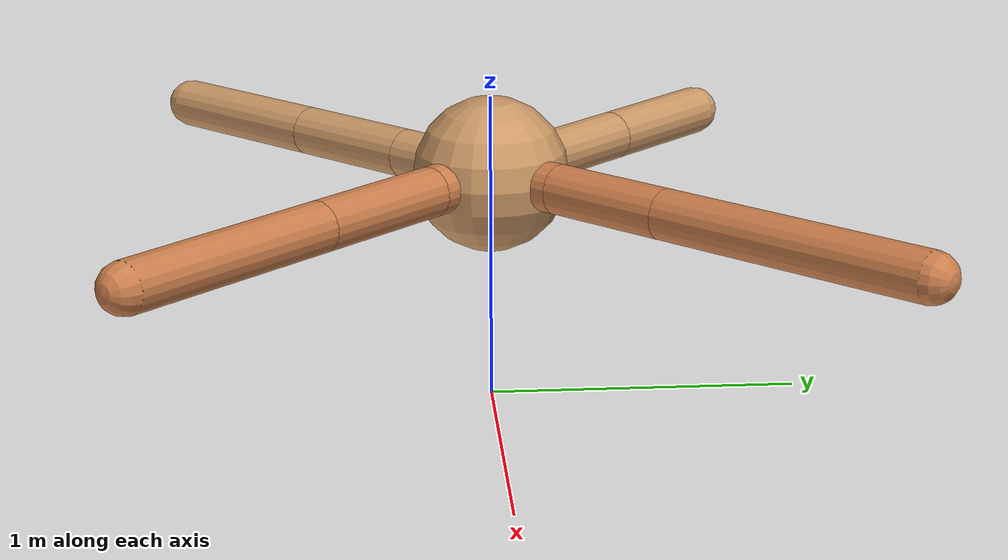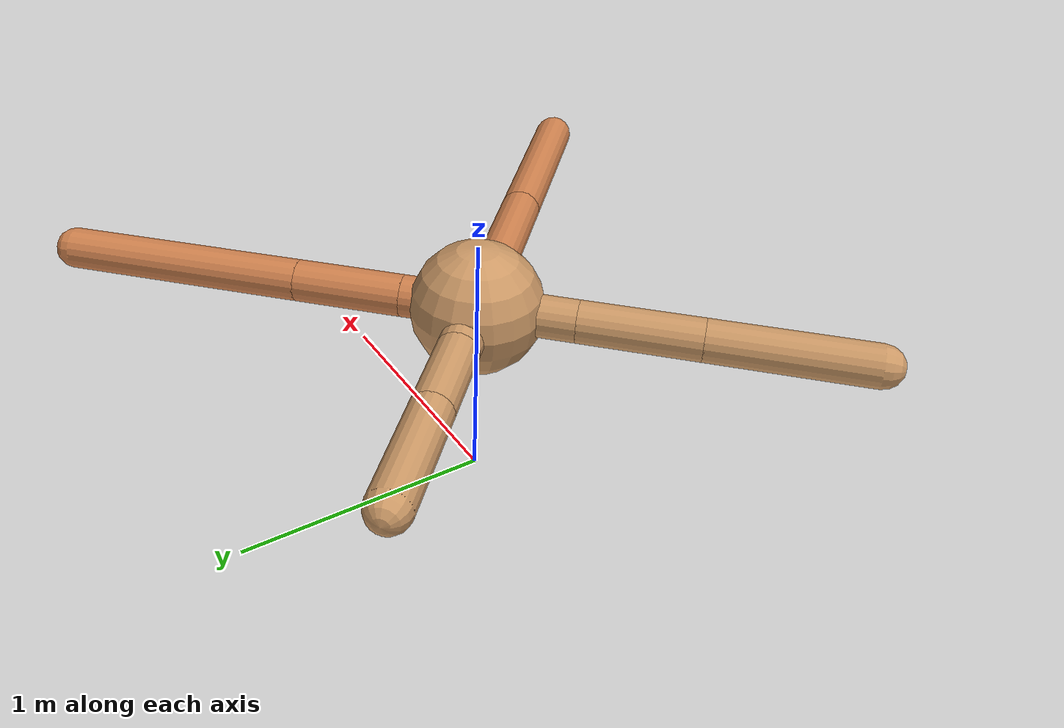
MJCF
<mujoco model="ant">
  <compiler angle="degree" coordinate="local" inertiafromgeom="true" />
  <option integrator="RK4" timestep="0.01" />
  <custom>
    <numeric data="0.0 0.0 0.55 1.0 0.0 0.0 0.0 0.0 1.0 0.0 -1.0 0.0 -1.0 0.0 1.0" name="init_qpos" />
  </custom>
  <default>
    <joint armature="1" damping="1" limited="true" />
    <geom conaffinity="0" condim="3" density="5.0" friction="1.5 0.1 0.1" margin="0.01" rgba="0.8 0.6 0.4 1" />
  </default>
  <worldbody>
    <body name="torso" pos="0 0 0.75">
      <geom name="torso_geom" pos="0 0 0" size="0.25" type="sphere" />

      <body name="front_left_leg" pos="0 0 0">
        <geom fromto="0.0 0.0 0.0 0.2 0.2 0.0" name="aux_1_geom" size="0.08" type="capsule" rgba=".8 .5 .3 1" />
        <body name="aux_1" pos="0.2 0.2 0.0">
          <joint axis="0 0 1" name="hip_1" pos="0.0 0.0 0.0" range="-40 40" type="hinge" />
          <geom fromto="0.0 0.0 0.0 0.29215401109231676 0.29215401109231676 0.0" name="left_leg_geom" size="0.08" type="capsule" rgba=".8 .5 .3 1" />
          <body pos="0.29215401109231676 0.29215401109231676 0.0" name="front_left_foot">
            <joint axis="-1 1 0" name="ankle_1" pos="0.0 0.0 0.0" range="30 100" type="hinge" />
            <geom fromto="0.0 0.0 0.0 0.6635127035296114 0.6635127035296114 0.0" name="left_ankle_geom" size="0.08" type="capsule" rgba=".8 .5 .3 1" />
          </body>
        </body>
      </body>
      <body name="front_right_leg" pos="0 0 0">
        <geom fromto="0.0 0.0 0.0 -0.2012153982881796 0.2012153982881796 0.0" name="aux_2_geom" size="0.08" type="capsule" />
        <body name="aux_2" pos="-0.2012153982881796 0.2012153982881796 0.0">
          <joint axis="0 0 1" name="hip_2" pos="0.0 0.0 0.0" range="-40 40" type="hinge" />
          <geom fromto="0.0 0.0 0.0 -0.23701009364662262 0.23701009364662262 0.0" name="right_leg_geom" size="0.08" type="capsule" />
          <body pos="-0.23701009364662262 0.23701009364662262 0.0" name="front_right_foot">
            <joint axis="1 1 0" name="ankle_2" pos="0.0 0.0 0.0" range="-100 -30" type="hinge" />
            <geom fromto="0.0 0.0 0.0 -0.32573393446520904 0.32573393446520904 0.0" name="right_ankle_geom" size="0.08" type="capsule" />
          </body>
        </body>
      </body>
      <body name="left_back_leg" pos="0 0 0">
        <geom fromto="0.0 0.0 0.0 -0.26292625172846457 -0.26292625172846457 0.0" name="aux_3_geom" size="0.08" type="capsule" />
        <body name="aux_3" pos="-0.26292625172846457 -0.26292625172846457 0.0">
          <joint axis="0 0 1" name="hip_3" pos="0.0 0.0 0.0" range="-40 40" type="hinge" />
          <geom fromto="0.0 0.0 0.0 -0.3155180766111722 -0.3155180766111722 0.0" name="back_leg_geom" size="0.08" type="capsule" />
          <body pos="-0.3155180766111722 -0.3155180766111722 0.0" name="left_back_foot">
            <joint axis="-1 1 0" name="ankle_3" pos="0.0 0.0 0.0" range="-100 -30" type="hinge" />
            <geom fromto="0.0 0.0 0.0 -0.4191325920274296 -0.4191325920274296 0.0" name="third_ankle_geom" size="0.08" type="capsule" />
          </body>
        </body>
      </body>
      <body name="right_back_leg" pos="0 0 0">
        <geom fromto="0.0 0.0 0.0 0.2 -0.2 0.0" name="aux_4_geom" size="0.08" type="capsule" rgba=".8 .5 .3 1" />
        <body name="aux_4" pos="0.2 -0.2 0.0">
          <joint axis="0 0 1" name="hip_4" pos="0.0 0.0 0.0" range="-40 40" type="hinge" />
          <geom fromto="0.0 0.0 0.0 0.34343891728140874 -0.34343891728140874 0.0" name="rightback_leg_geom" size="0.08" type="capsule" rgba=".8 .5 .3 1" />
          <body pos="0.34343891728140874 -0.34343891728140874 0.0" name="right_back_foot">
            <joint axis="1 1 0" name="ankle_4" pos="0.0 0.0 0.0" range="30 100" type="hinge" />
            <geom fromto="0.0 0.0 0.0 0.5360015998488213 -0.5360015998488213 0.0" name="fourth_ankle_geom" size="0.08" type="capsule" rgba=".8 .5 .3 1" />
          </body>
        </body>
      </body>
    </body>
  </worldbody>
  <actuator>
    <motor ctrllimited="true" ctrlrange="-1.0 1.0" joint="hip_4" gear="150" />
    <motor ctrllimited="true" ctrlrange="-1.0 1.0" joint="ankle_4" gear="150" />
    <motor ctrllimited="true" ctrlrange="-1.0 1.0" joint="hip_1" gear="150" />
    <motor ctrllimited="true" ctrlrange="-1.0 1.0" joint="ankle_1" gear="150" />
    <motor ctrllimited="true" ctrlrange="-1.0 1.0" joint="hip_2" gear="150" />
    <motor ctrllimited="true" ctrlrange="-1.0 1.0" joint="ankle_2" gear="150" />
    <motor ctrllimited="true" ctrlrange="-1.0 1.0" joint="hip_3" gear="150" />
    <motor ctrllimited="true" ctrlrange="-1.0 1.0" joint="ankle_3" gear="150" />
  </actuator>
</mujoco>
